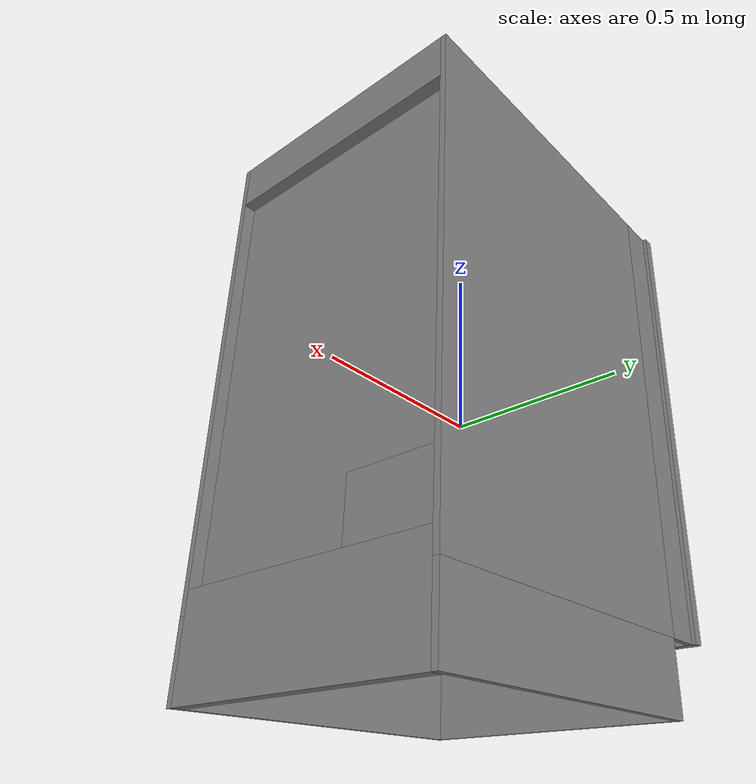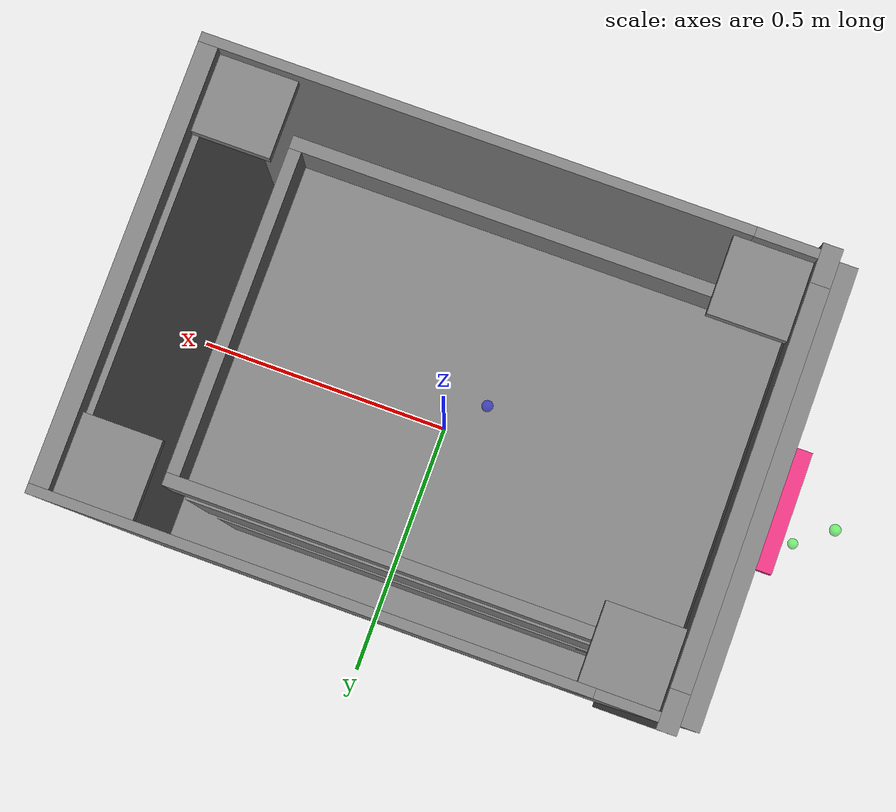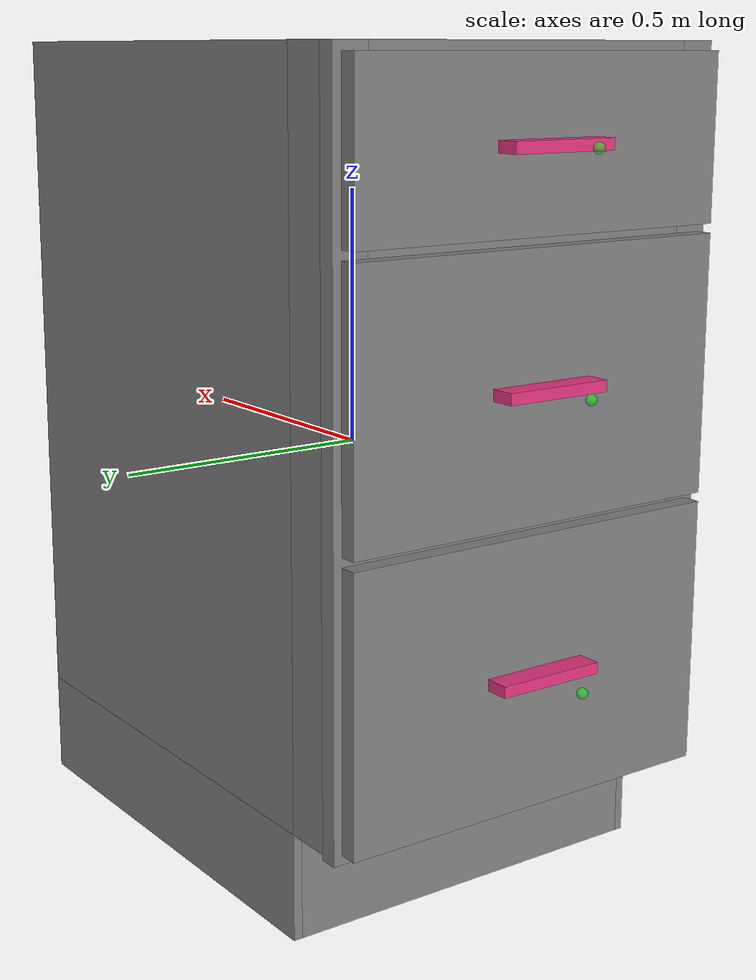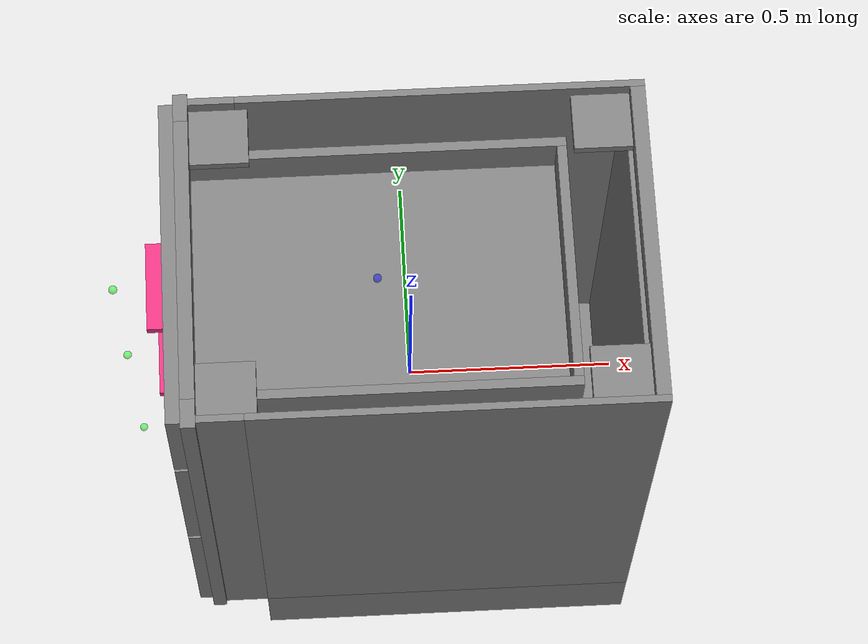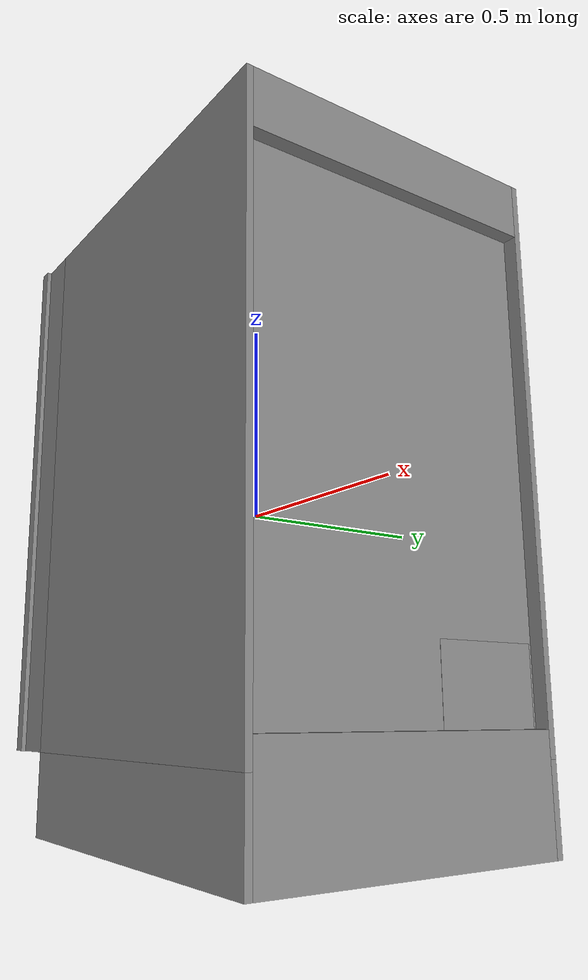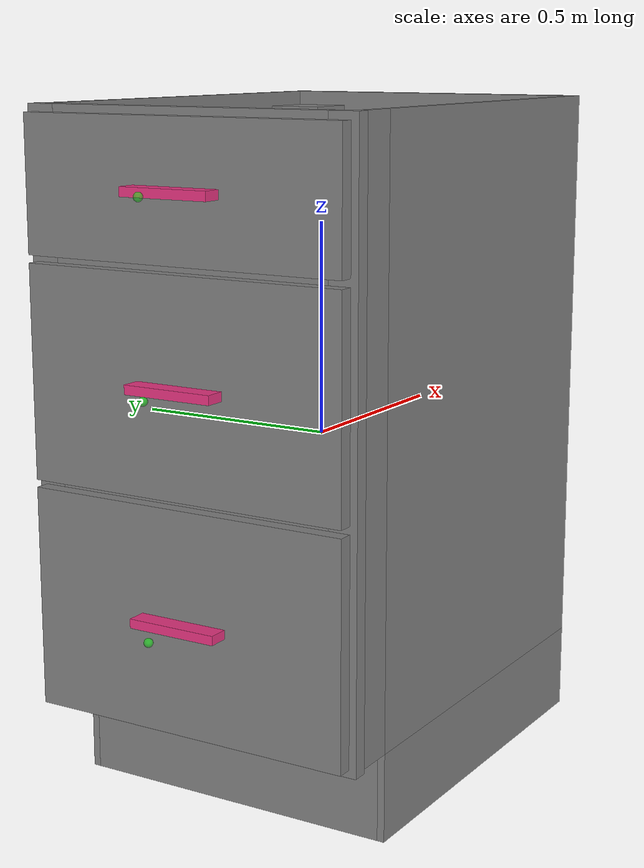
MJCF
<mujoco model="partnet_4fd61ff0aa949a4486d53ab0fe94e911">
  <compiler angle="radian" meshdir="textured_objs/"/>

  <worldbody>
    <geom size="0.03413 0.682575 0.017065" pos="-0.51681 -0.37247 0.09596" quat="0.5 0.5 -0.5 -0.5" type="box"/>
    <geom size="0.03413 0.682575 0.017065" pos="-0.51681 0.37836 0.09596" quat="0.5 0.5 -0.5 -0.5" type="box"/>
    <geom size="0.381105 0.068255 0.017065" pos="0.54119 0.00294 0.71028" quat="0.5 0.5 -0.5 -0.5" type="box"/>
    <geom size="0.34129 0.03413 0.017065" pos="-0.51681 0.00294 -0.55249" quat="0.5 0.5 -0.5 -0.5" type="box"/>
    <geom size="0.34129 0.03413 0.017065" pos="-0.51681 0.00294 -0.04625" quat="0.5 0.5 -0.5 -0.5" type="box"/>
    <geom size="0.34129 0.03413 0.017065" pos="-0.51681 0.00294 0.44862" quat="0.5 0.5 -0.5 -0.5" type="box"/>
    <geom size="0.34129 0.03413 0.017065" pos="-0.51681 0.00294 0.74441" quat="0.5 0.5 -0.5 -0.5" type="box"/>
    <geom size="0.06826 0.011375 0.06826" pos="-0.43148 -0.3099 0.73303" quat="0.5 0.5 -0.5 -0.5" type="box"/>
    <geom size="0.068255 0.011375 0.06826" pos="-0.43148 0.31579 0.73303" quat="0.5 0.5 -0.5 -0.5" type="box"/>
    <geom size="0.06826 0.011375 0.068255" pos="0.45587 -0.3099 0.73303" quat="0.5 0.5 -0.5 -0.5" type="box"/>
    <geom size="0.068255 0.011375 0.068255" pos="0.45587 0.31579 0.73303" quat="0.5 0.5 -0.5 -0.5" type="box"/>
    <geom size="0.00853 0.682575 0.47496" pos="0.08329 0.39258 0.09596" quat="0.5 0.5 -0.5 -0.5" type="box"/>
    <geom size="0.00853 0.682575 0.054035" pos="-0.4457 0.39258 0.09596" quat="0.5 0.5 -0.5 -0.5" type="box"/>
    <geom size="0.00853 0.682575 0.054035" pos="-0.4457 -0.38669 0.09596" quat="0.5 0.5 -0.5 -0.5" type="box"/>
    <geom size="0.00853 0.682575 0.47496" pos="0.08329 -0.38669 0.09596" quat="0.5 0.5 -0.5 -0.5" type="box"/>
    <geom size="0.381105 0.63707 0.00569" pos="0.51844 0.00294 0.08458" quat="0.5 0.5 -0.5 -0.5" type="box"/>
    <geom size="0.381105 0.011375 0.506245" pos="0.0065 0.00294 -0.54111" quat="0.5 0.5 -0.5 -0.5" type="box"/>
    <geom size="0.136515 0.09215 0.0005" pos="0.52412 0.24185 -0.4319" quat="0.5 0.5 -0.5 -0.5" type="box"/>
    <geom size="0.0005 0.02275 0.03371" pos="-0.4319 0.31295 -0.19129" quat="0.5 0.5 -0.5 -0.5" type="box"/>
    <geom size="0.0005 0.022755 0.03371" pos="-0.4319 0.31295 0.31495" quat="0.5 0.5 -0.5 -0.5" type="box"/>
    <geom size="0.0005 0.022755 0.03371" pos="-0.4319 0.31295 0.61642" quat="0.5 0.5 -0.5 -0.5" type="box"/>
    <geom size="0.00853 0.102385 0.47496" pos="0.08329 -0.38669 -0.68901" quat="0.5 0.5 -0.5 -0.5" type="box"/>
    <geom size="0.381105 0.13367 0.017065" pos="0.54119 0.00294 -0.65772" quat="0.5 0.5 -0.5 -0.5" type="box"/>
    <geom size="0.00853 0.102385 0.47496" pos="0.08329 0.39258 -0.68901" quat="0.5 0.5 -0.5 -0.5" type="box"/>
    <geom size="0.381105 0.11945 0.00853" pos="-0.38313 0.00294 -0.67194" quat="0.5 0.5 -0.5 -0.5" type="box"/>

    <body name="link_0" quat="0.5 0.5 -0.5 -0.5">
      <inertial pos="0 0 0" mass="1" diaginertia="0.01 0.01 0.01"/>
      <joint name="joint_0" pos="0 0 0" axis="0 0 1" type="slide" range="0 0.8"/>
      <geom size="0.39248 0.254545 0.017065" pos="-0.00294 -0.31501 0.55093" type="box"/>
      <geom size="0.28725 0.18202 0.011375" pos="-0.00294 -0.31643 0.52249" type="box"/>
      <geom size="0.011375 0.18202 0.45505" pos="0.29568 -0.31643 0.07882" type="box"/>
      <geom size="0.011375 0.18202 0.45505" pos="-0.30157 -0.31643 0.07882" type="box"/>
      <geom size="0.28725 0.18202 0.011375" pos="-0.00294 -0.31643 -0.36486" type="box"/>
      <geom size="0.28725 0.0005 0.4323" pos="-0.00294 -0.46717 0.07882" type="box"/>
      <geom size="0.28725 0.0005 0.4323" pos="-0.00294 -0.4757 0.07882" type="box"/>

      <geom name="handle_geom_0" size="0.10708 0.010525 0.022935" pos="-0.00294 -0.31501 0.59093" type="box" condim="4" friction="5 0.1 0.0001" solimp="0.95 0.99 0.001" solref="0.005 1" rgba="0.9 0.2 0.5 1"/>
      <site name="grasp_target_0" pos="-0.00294 -0.31501 0.59093" size="0.01" rgba="1 0 0 0.5"/>
      <site name="pre_grasp_target_0" pos="-0.00294 -0.31501 0.69093" size="0.01" rgba="0 1 0 0.5"/>
      <site name="inner_target_0" pos="-0.00294 -0.31501 0.0788" size="0.01" rgba="0 0 1 0.5"/>
    </body>

    <body name="link_1" quat="0.5 0.5 -0.5 -0.5">
      <inertial pos="0 0 0" mass="1" diaginertia="0.01 0.01 0.01"/>
      <joint name="joint_1" pos="0 0 0" axis="0 0 1" type="slide" range="0 0.8"/>
      <geom size="0.39248 0.241745 0.017065" pos="-0.00294 0.19834 0.55093" type="box"/>
      <geom size="0.28725 0.18202 0.011375" pos="-0.00294 0.18981 0.52249" type="box"/>
      <geom size="0.011375 0.18202 0.45505" pos="0.29568 0.18981 0.07882" type="box"/>
      <geom size="0.011375 0.18202 0.45505" pos="-0.30157 0.18981 0.07882" type="box"/>
      <geom size="0.28725 0.18202 0.011375" pos="-0.00294 0.18981 -0.36486" type="box"/>
      <geom size="0.28725 0.0005 0.4323" pos="-0.00294 0.03054 0.07882" type="box"/>
      <geom size="0.28725 0.0005 0.4323" pos="-0.00294 0.03908 0.07882" type="box"/>

      <geom name="handle_geom_1" size="0.10708 0.010525 0.022935" pos="-0.00294 0.19834 0.59093" type="box" condim="4" friction="5 0.1 0.0001" solimp="0.95 0.99 0.001" solref="0.005 1" rgba="0.9 0.2 0.5 1"/>
      <site name="grasp_target_1" pos="-0.00294 0.19834 0.59093" size="0.01" rgba="1 0 0 0.5"/>
      <site name="pre_grasp_target_1" pos="-0.00294 0.19834 0.69093" size="0.01" rgba="0 1 0 0.5"/>
      <site name="inner_target_1" pos="-0.00294 0.19834 0.0788" size="0.01" rgba="0 0 1 0.5"/>
    </body>

    <body name="link_2" quat="0.5 0.5 -0.5 -0.5">
      <inertial pos="0 0 0" mass="1" diaginertia="0.01 0.01 0.01"/>
      <joint name="joint_2" pos="0 0 0" axis="0 0 1" type="slide" range="0 0.8"/>
      <geom size="0.28725 0.06826 0.011375" pos="-0.00294 0.60505 0.52249" type="box"/>
      <geom size="0.39248 0.15216 0.017065" pos="-0.00294 0.60931 0.55093" type="box"/>
      <geom size="0.011375 0.06826 0.45505" pos="0.29568 0.60505 0.07882" type="box"/>
      <geom size="0.011375 0.06826 0.45505" pos="-0.30157 0.60505 0.07882" type="box"/>
      <geom size="0.28725 0.06826 0.011375" pos="-0.00294 0.60505 -0.36486" type="box"/>
      <geom size="0.28725 0.0005 0.4323" pos="-0.00294 0.56807 0.07882" type="box"/>
      <geom size="0.28725 0.0005 0.4323" pos="-0.00294 0.55954 0.07882" type="box"/>

      <geom name="handle_geom_2" size="0.10708 0.010525 0.022935" pos="-0.00294 0.60931 0.59093" type="box" condim="4" friction="5 0.1 0.0001" solimp="0.95 0.99 0.001" solref="0.005 1" rgba="0.9 0.2 0.5 1"/>
      <site name="grasp_target_2" pos="-0.00294 0.60931 0.59093" size="0.01" rgba="1 0 0 0.5"/>
      <site name="pre_grasp_target_2" pos="-0.00294 0.60931 0.69093" size="0.01" rgba="0 1 0 0.5"/>
      <site name="inner_target_2" pos="-0.00294 0.60931 0.0788" size="0.01" rgba="0 0 1 0.5"/>
    </body>
  </worldbody>
</mujoco>
